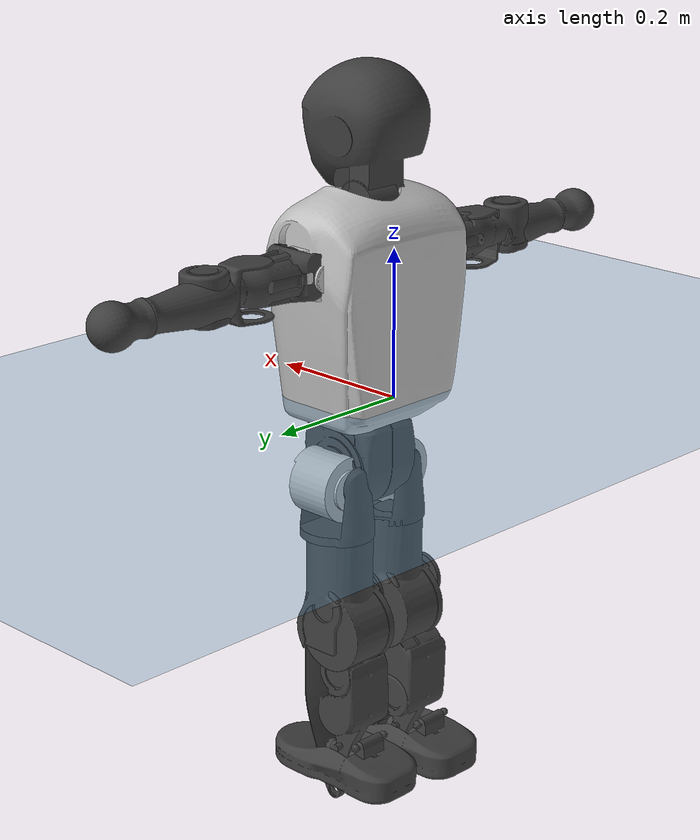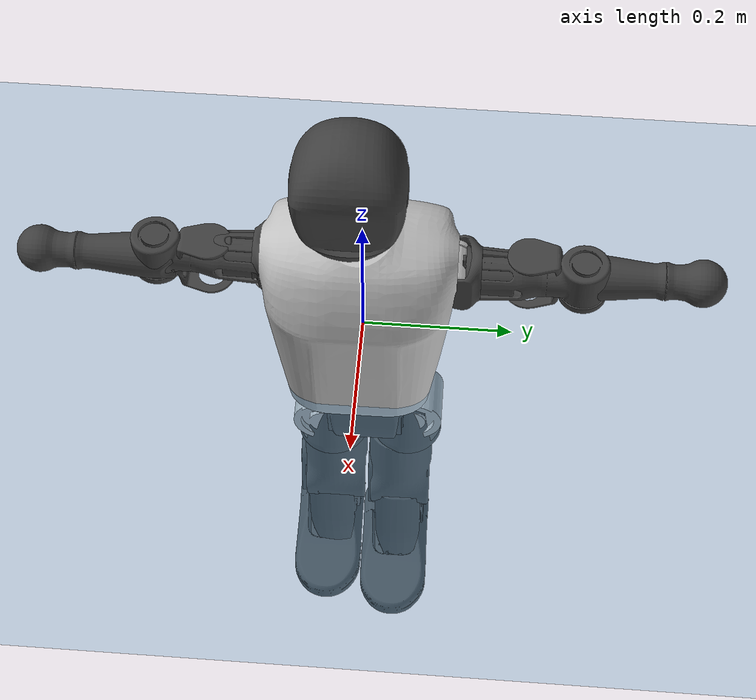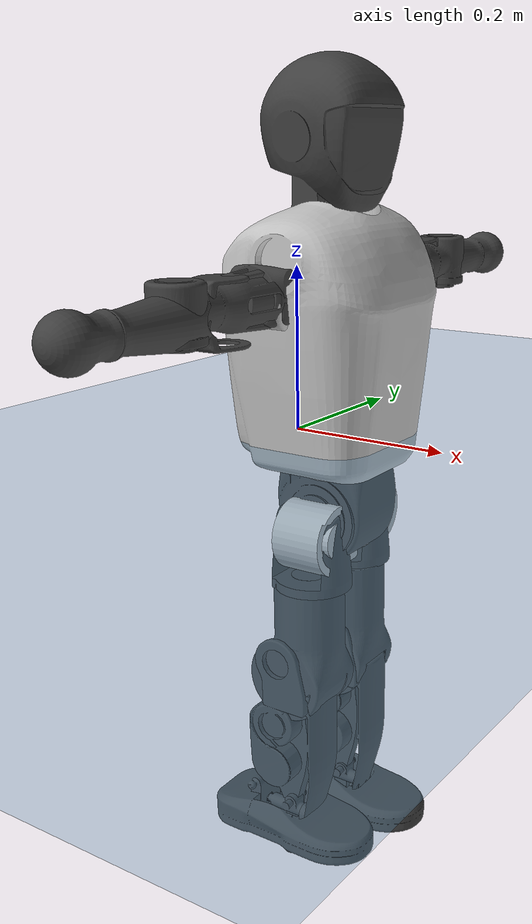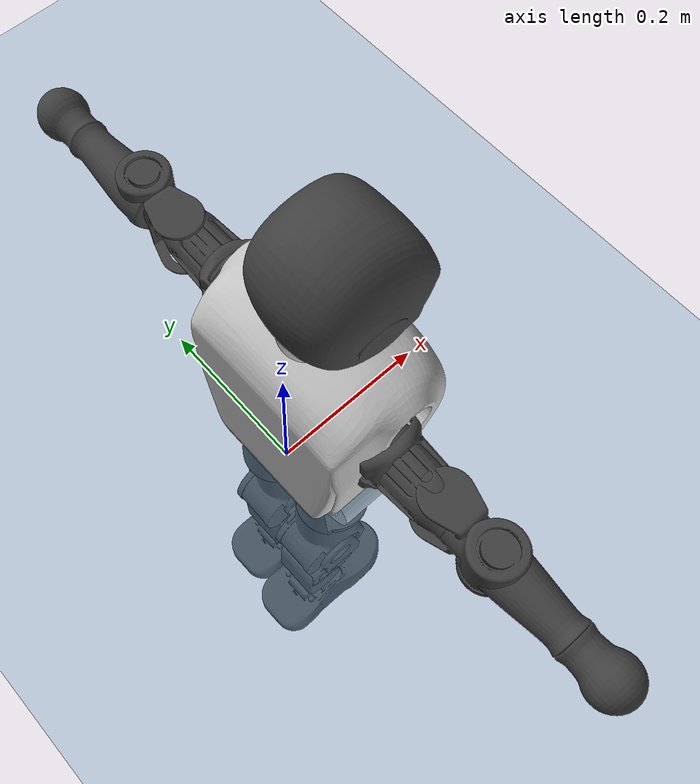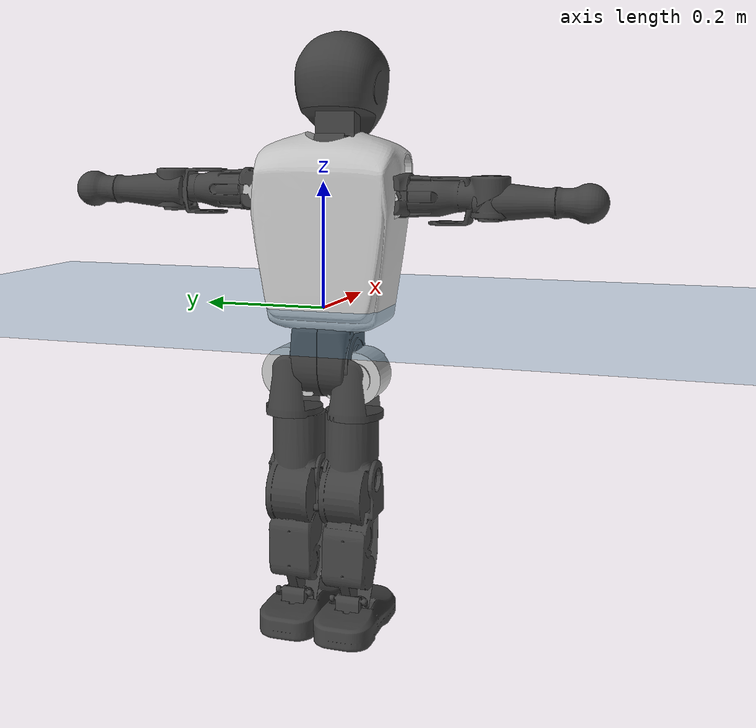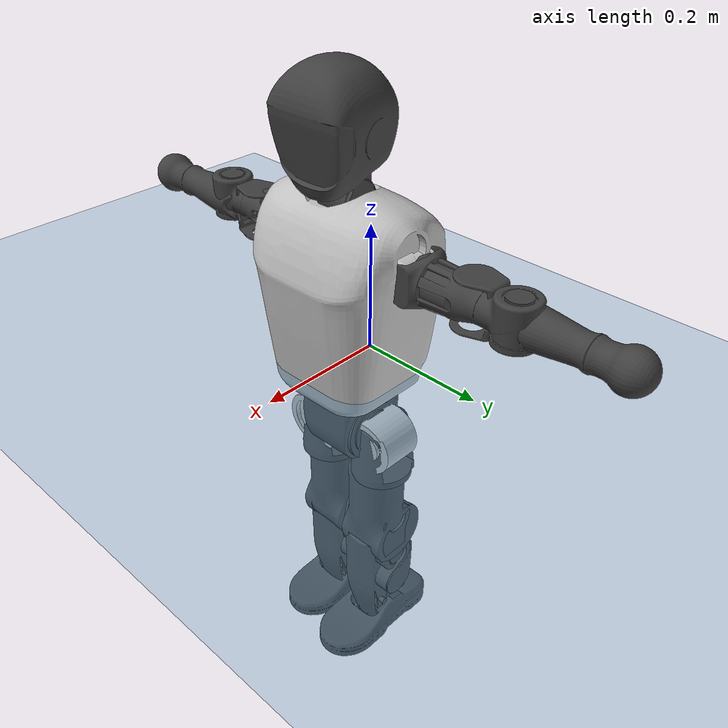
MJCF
<mujoco model="T1">
  <compiler angle="radian" assetdir="assets" balanceinertia="true" inertiafromgeom="false"/>

  <option timestep="0.005" density="1.2" viscosity="2e-05"/>

  <size nkey="1"/>

  <visual>
    <quality shadowsize="8192"/>
    <map shadowclip="0.5"/>
  </visual>

  <default>
    <default class="/">
      <joint armature="0.01" damping="0.01" frictionloss="0.1"/>
      <geom contype="0" conaffinity="0" group="1" solref="-1000 -80"/>
      <site size="0.01 0.005 0.005" group="5"/>
      <general forcelimited="true" biastype="affine" gainprm="25" biasprm="0 -25 -0.6"/>
      <default class="t1">
        <geom rgba="0.25 0.25 0.25 1"/>
        <default class="visual">
          <geom type="mesh" group="2"/>
        </default>
        <default class="collision">
          <geom group="3"/>
        </default>
        <default class="foot">
          <geom size="0.1115 0.05 0.015" type="box" condim="6" group="4" priority="1" solimp="0.015 1 0.015"/>
        </default>
        <default class="reward_collision_sphere">
          <geom group="5" rgba="1 0 0 1"/>
        </default>
      </default>
    </default>
  </default>

  <asset>
    <texture type="skybox" colorspace="auto" name="//unnamed_texture_0" builtin="gradient" rgb1="0.95 0.95 0.95" rgb2="0.95 0.95 0.95" width="100" height="600"/>
    <texture type="2d" colorspace="auto" name="texplane" builtin="checker" rgb1="0.345 0.575 0.748" rgb2="0.345 0.575 0.748" markrgb="1 1 1" width="512" height="512"/>
    <material name="MatPlane" class="/" texture="texplane" texuniform="true" texrepeat="2 2" specular="0.9"/>
    <mesh name="Trunk" class="/" file="Trunk.stl"/>
    <mesh name="H1" class="/" file="H1.stl"/>
    <mesh name="H2" class="/" file="H2.stl"/>
    <mesh name="AL1" class="/" file="AL1.stl"/>
    <mesh name="AL2" class="/" file="AL2.stl"/>
    <mesh name="AL3" class="/" file="AL3.stl"/>
    <mesh name="left_hand_link" class="/" file="left_hand_link.stl"/>
    <mesh name="AR1" class="/" file="AR1.stl"/>
    <mesh name="AR2" class="/" file="AR2.stl"/>
    <mesh name="AR3" class="/" file="AR3.stl"/>
    <mesh name="right_hand_link" class="/" file="right_hand_link.stl"/>
    <mesh name="Waist" class="/" file="Waist.stl"/>
    <mesh name="Hip_Pitch_Left" class="/" file="Hip_Pitch_Left.stl"/>
    <mesh name="Hip_Roll_Left" class="/" file="Hip_Roll_Left.stl"/>
    <mesh name="Hip_Yaw_Left" class="/" file="Hip_Yaw_Left.stl"/>
    <mesh name="Shank_Left" class="/" file="Shank_Left.stl"/>
    <mesh name="Ankle_Cross_Left" class="/" file="Ankle_Cross_Left.stl"/>
    <mesh name="left_foot_link" class="/" file="left_foot_link.stl"/>
    <mesh name="Hip_Pitch_Right" class="/" file="Hip_Pitch_Right.stl"/>
    <mesh name="Hip_Roll_Right" class="/" file="Hip_Roll_Right.stl"/>
    <mesh name="Hip_Yaw_Right" class="/" file="Hip_Yaw_Right.stl"/>
    <mesh name="Shank_Right" class="/" file="Shank_Right.stl"/>
    <mesh name="Ankle_Cross_Right" class="/" file="Ankle_Cross_Right.stl"/>
    <mesh name="right_foot_link" class="/" file="right_foot_link.stl"/>
  </asset>

  <worldbody>
    <geom name="floor" class="/" size="100 100 0.125" type="plane" group="0" material="MatPlane"/>
    <light name="toplight_shadow" class="/" pos="0 0 5" dir="0.0990148 0.0990148 -0.990148" type="directional" ambient="0.04 0.04 0.04" diffuse="0.55 0.55 0.55" specular="0.12 0.12 0.12"/>
    <light name="toplight_fill" class="/" pos="0 0 5" dir="0.0990148 0.0990148 -0.990148" type="directional" castshadow="false" ambient="0.04 0.04 0.04" diffuse="0.3 0.3 0.3" specular="0.08 0.08 0.08"/>
    <body name="trunk" childclass="t1" pos="-0.0019688 0.00231221 -0.00154194" quat="0.999992 0.00294818 0.000800139 0.00245461">
      <inertial pos="0.0461756 0.00567682 0.0853505" quat="0.999871 -0.00644795 -0.013027 0.00676205" mass="4.36789" diaginertia="0.0211993 0.00454144 0.0199702"/>
      <joint name="//unnamed_joint_0" type="free" armature="0" damping="0" frictionloss="0"/>
      <geom name="//unnamed_geom_1" class="visual" rgba="0.76 0.76 0.76 1" mesh="Trunk"/>
      <geom name="//unnamed_geom_2" class="collision" size="0.0525036 0.0700048 0.105007" pos="0.0446868 0 0.0952197" type="box"/>
      <geom name="//unnamed_geom_3" class="reward_collision_sphere" size="0.0805055" pos="0.0446868 0 0.0793498"/>
      <geom name="//unnamed_geom_4" class="reward_collision_sphere" size="0.0105007" pos="0.0446868 0.0477586 0"/>
      <geom name="//unnamed_geom_5" class="reward_collision_sphere" size="0.0105007" pos="0.0446868 -0.0477586 0"/>
      <geom name="//unnamed_geom_6" class="reward_collision_sphere" size="0.0105007" pos="0.0446868 0.0601197 0.14283"/>
      <geom name="//unnamed_geom_7" class="reward_collision_sphere" size="0.0105007" pos="0.0446868 -0.0601197 0.14283"/>
      <site name="imu" pos="-0.0221251 0.00427837 0.0222692" size="0.00700048"/>
      <camera name="track" pos="0 -1.12373 0" quat="0.707107 0.707107 0 0" mode="trackcom"/>
      <camera name="ego_camera" pos="0.0908632 0 0.333269" quat="-0.5 -0.5 0.5 0.5"/>
      <body name="H1" pos="0.0467446 -0.0021514 0.19347" quat="1 0.00043819 0.000373121 0.000291499">
        <inertial pos="0.00216913 -0.00950606 0.0436942" quat="0.765197 -0.0502914 -0.00589224 0.641802" mass="0.160568" diaginertia="5.86871e-05 1.39196e-05 5.56282e-05"/>
        <joint name="AAHead_yaw" pos="0 0 0" axis="-0.0209906 -0.0322482 0.999259" range="-1.57368 1.54419" armature="0.00822305" damping="0.0100844" frictionloss="0.0691655"/>
        <geom name="//unnamed_geom_8" class="visual" mesh="H1"/>
        <body name="H2" pos="-0.00484979 -0.00800546 0.0530205" quat="1 -0.000559265 0.000563305 -0.000139545">
          <inertial pos="2.03555e-05 -0.00659384 0.0800722" quat="0.987967 0.10352 -0.0801896 -0.0823114" mass="0.211344" diaginertia="0.00041677 0.000105098 0.00052566"/>
          <joint name="Head_pitch" pos="0 0 0" axis="0.00388613 -0.99998 -0.00492228" range="-1.25209 0.358713" armature="0.00983501" damping="0.00622484" frictionloss="0.0355952"/>
          <geom name="//unnamed_geom_9" class="visual" mesh="H2"/>
          <geom name="//unnamed_geom_10" class="collision" size="0.0560039" pos="0.0074478 0 0.0872848"/>
          <geom name="//unnamed_geom_11" class="reward_collision_sphere" size="0.0630043" pos="0.0148956 0 0.0793498"/>
        </body>
      </body>
      <body name="AL1" pos="0.0452807 0.0641903 0.182141" quat="1 0.000293536 0.000340584 -0.000382707">
        <inertial pos="0.00753596 0.0272846 -0.00160629" quat="0.502068 0.499557 -0.497196 0.501166" mass="0.175528" diaginertia="0.000311766 7.16092e-05 9.61805e-05"/>
        <joint name="Left_Shoulder_Pitch" pos="0 0 0" axis="-0.034227 0.999153 -0.0228549" stiffness="0.00376842" range="-3.27043 1.26881" armature="0.00659413" damping="0.00882122" frictionloss="0.073185"/>
        <geom name="//unnamed_geom_12" class="visual" rgba="0.76 0.76 0.76 1" mesh="AL1"/>
        <body name="AL2" pos="0.00342617 0.0308122 0.0044404" quat="1 0.000164841 0.000280035 6.80794e-07">
          <inertial pos="0.000434051 0.0238277 0.00632047" quat="0.497988 0.509678 -0.501436 0.490712" mass="0.056902" diaginertia="9.13127e-05 1.92635e-05 5.55966e-05"/>
          <joint name="Left_Shoulder_Roll" pos="0 0 0" axis="-0.99995 -0.00773314 0.00641575" range="-1.60682 1.77593" armature="0.00644298" damping="0" frictionloss="0.066921"/>
          <geom name="//unnamed_geom_13" class="visual" mesh="AL2"/>
          <body name="AL3" pos="-0.000556715 0.0364955 -0.00120786" quat="0.999999 -0.000678853 -0.000247662 -0.0007539">
            <inertial pos="0.00305099 0.0476323 0.00130957" quat="0.687633 0.7253 0.0211868 -0.0255282" mass="0.348887" diaginertia="0.00282122 0.000701484 0.000215458"/>
            <joint name="Left_Elbow_Pitch" pos="0 0 0" axis="-0.00650413 -0.999968 -0.00470126" stiffness="0.00256324" range="-2.2685 2.23579" armature="0.00720841" damping="0" frictionloss="0.0394709"/>
            <geom name="//unnamed_geom_14" class="visual" mesh="AL3"/>
            <geom name="//unnamed_geom_15" class="collision" size="0.0210014 0.0525036" pos="0 0.0280933 0" quat="0.707105 0.707108 0 0" type="cylinder"/>
            <geom name="//unnamed_geom_16" class="reward_collision_sphere" size="0.0252017"/>
            <body name="left_hand_link" pos="-0.00681636 0.0788108 -0.00381638" quat="1 -0.000628236 -0.000131732 0.000155022">
              <inertial pos="-0.00702449 0.0659965 0.00696726" quat="0.707546 0.706666 0.00111042 -0.00112544" mass="0.112235" diaginertia="0.00188809 0.000431526 6.34793e-05"/>
              <joint name="Left_Elbow_Yaw" pos="0 0 0" axis="0.000272707 0.00893947 0.99996" stiffness="0.0064138" range="-2.4075 -0.016376" armature="0.00553111" damping="0" frictionloss="0.0706005"/>
              <geom name="//unnamed_geom_17" class="visual" mesh="left_hand_link"/>
              <geom name="//unnamed_geom_18" class="collision" size="0.0210014 0.0612542" pos="0 0.0730426 0" quat="0.707105 0.707108 0 0" type="cylinder"/>
              <geom name="//unnamed_geom_19" class="reward_collision_sphere" size="0.0350024"/>
              <geom name="//unnamed_geom_20" class="reward_collision_sphere" size="0.0245017" pos="0 0.0618053 0"/>
              <geom name="//unnamed_geom_21" class="reward_collision_sphere" size="0.0245017" pos="0 0.120801 0"/>
            </body>
          </body>
        </body>
      </body>
      <body name="AR1" pos="0.0372133 -0.0567829 0.173781" quat="0.999987 -0.00425069 0.00185841 -0.00201853">
        <inertial pos="-0.000388989 -0.0241533 -0.0014741" quat="0.499326 0.501261 -0.503913 0.495462" mass="0.162104" diaginertia="0.000299152 6.33231e-05 8.44373e-05"/>
        <joint name="Right_Shoulder_Pitch" pos="0 0 0" axis="-0.00394774 -0.999991 0.00140892" range="-1.29694 3.31637" armature="0.00714694" damping="0" frictionloss="0.07572"/>
        <geom name="//unnamed_geom_22" class="visual" rgba="0.76 0.76 0.76 1" mesh="AR1"/>
        <body name="AR2" pos="-0.00269166 -0.0222653 0.00815563" quat="0.999996 8.39712e-05 -0.00295367 0.000316436">
          <inertial pos="0.00377263 -0.0222627 0.000848811" quat="0.508456 0.498169 -0.521192 0.470807" mass="0.0583986" diaginertia="9.73181e-05 1.97477e-05 5.80981e-05"/>
          <joint name="Right_Shoulder_Roll" pos="0 0 0" axis="-0.999561 0.00230455 -0.0295426" stiffness="0.0178442" range="-1.70082 1.61342" armature="0.00685879" damping="0.033817" frictionloss="0.0637278"/>
          <geom name="//unnamed_geom_23" class="visual" mesh="AR2"/>
          <body name="AR3" pos="0.0030674 -0.0326892 -0.0022846" quat="0.999994 -0.000635645 -0.00230085 -0.00245965">
            <inertial pos="-0.00982888 -0.0457189 -0.000995585" quat="0.705985 0.708202 0.00314904 0.00492085" mass="0.341478" diaginertia="0.00262281 0.00064268 0.000178821"/>
            <joint name="Right_Elbow_Pitch" pos="0 0 0" axis="-0.00668284 0.9999 0.0124434" range="-2.25141 2.47354" armature="0.00712564" damping="0.00170617" frictionloss="0.062321"/>
            <geom name="//unnamed_geom_24" class="visual" mesh="AR3"/>
            <geom name="//unnamed_geom_25" class="collision" size="0.0210014 0.0525036" pos="0 -0.0280933 0" quat="0.707105 0.707108 0 0" type="cylinder"/>
            <geom name="//unnamed_geom_26" class="reward_collision_sphere" size="0.0252017"/>
            <body name="right_hand_link" pos="0.00179813 -0.0786232 -0.00709596" quat="0.999995 0.00185562 -0.000305092 0.00236936">
              <inertial pos="-0.00882962 -0.061906 0.00769327" quat="0.708911 0.705297 0.000710667 0.000957727" mass="0.125624" diaginertia="0.00235098 0.000533405 6.80913e-05"/>
              <joint name="Right_Elbow_Yaw" pos="0 0 0" axis="0.00977033 -0.00379682 0.999945" range="0.0258071 2.57771" armature="0.00722209" damping="0.00911033" frictionloss="0.0697101"/>
              <geom name="//unnamed_geom_27" class="visual" mesh="right_hand_link"/>
              <geom name="//unnamed_geom_28" class="collision" size="0.0210014 0.0612542" pos="0 -0.0730426 0" quat="0.707105 0.707108 0 0" type="cylinder"/>
              <geom name="//unnamed_geom_29" class="reward_collision_sphere" size="0.0350024"/>
              <geom name="//unnamed_geom_30" class="reward_collision_sphere" size="0.0245017" pos="0 -0.0618053 0"/>
              <geom name="//unnamed_geom_31" class="reward_collision_sphere" size="0.0245017" pos="0 -0.120801 0"/>
            </body>
          </body>
        </body>
      </body>
      <body name="Waist" pos="0.0534334 0.00689388 -0.0940054" quat="0.999999 0.000846541 -0.000996087 0.000873389">
        <inertial pos="0.00333659 -0.00566832 0.0043097" quat="0.987221 0.00371568 -0.158767 0.0131842" mass="0.995798" diaginertia="0.00128319 0.000320958 0.00166091"/>
        <joint name="Waist" pos="0 0 0" axis="-0.000100941 -0.0032888 0.999995" stiffness="0.00352795" range="-1.53501 1.59432" armature="0.00779478" damping="0.047243" frictionloss="0.0589378"/>
        <geom name="//unnamed_geom_32" class="visual" mesh="Waist"/>
        <body name="Hip_Pitch_Left" pos="-0.00288141 0.059126 0.0013965" quat="1 0.000338517 -0.000289772 0.000167446">
          <inertial pos="0.00228175 -0.00282012 -0.00714235" quat="0.975599 0.219018 0.0154117 0.000181687" mass="0.368119" diaginertia="0.00042513 8.36299e-05 0.000406707"/>
          <joint name="Left_Hip_Pitch" pos="0 0 0" axis="-0.00582206 0.999983 0.000863679" range="-1.77314 1.43617" armature="0.00694777" damping="0.0294924" frictionloss="0.0756715"/>
          <geom name="//unnamed_geom_33" class="visual" rgba="0.76 0.76 0.76 1" mesh="Hip_Pitch_Left"/>
          <body name="Hip_Roll_Left" pos="-0.00745773 -0.00416251 -0.0121481" quat="0.999999 0.000626339 -0.000160065 0.000770655">
            <inertial pos="0.000198032 -3.04482e-05 -0.0364315" quat="0.705554 0.0024585 -0.00841364 0.708602" mass="0.119981" diaginertia="0.000338736 8.42225e-05 0.000162638"/>
            <joint name="Left_Hip_Roll" pos="0 0 0" axis="-0.999971 0.00678633 -0.00330941" stiffness="0.035228" range="-1.54136 0.0441177" armature="0.00777499" damping="0.00805704" frictionloss="0.0767417"/>
            <geom name="//unnamed_geom_34" class="visual" mesh="Hip_Roll_Left"/>
            <geom name="//unnamed_geom_35" class="reward_collision_sphere" size="0.0385026"/>
            <body name="Hip_Yaw_Left" pos="0.00154436 -0.00869472 -0.0750752" quat="1 -5.2358e-06 -6.77786e-05 -3.53227e-05">
              <inertial pos="-0.0025244 -0.00176726 -0.0714886" quat="0.683153 -0.0513297 -0.05356 0.726497" mass="0.772686" diaginertia="0.0057062 0.00152408 0.000769975"/>
              <joint name="Left_Hip_Yaw" pos="0 0 0" axis="0.000121269 -0.00102712 -0.999999" range="-1.04929 0.807907" armature="0.00573734" damping="0.0579477" frictionloss="0.0717735"/>
              <geom name="//unnamed_geom_36" class="visual" mesh="Hip_Yaw_Left"/>
              <geom name="//unnamed_geom_37" class="collision" size="0.0350024 0.0560039" type="cylinder"/>
              <body name="Shank_Left" pos="-0.0071767 -0.00268708 -0.0991312" quat="0.999999 -0.000554773 0.000501073 0.000692264">
                <inertial pos="-0.00163875 -0.000123089 -0.0924031" quat="0.997733 0.00248256 -0.0274887 0.0613818" mass="0.566146" diaginertia="0.0076627 0.00204503 0.000641267"/>
                <joint name="Left_Knee_Pitch" pos="0 0 0" axis="-0.00264579 0.999991 -0.00325598" range="-0.0609018 2.32833" armature="0.0070484" damping="0" frictionloss="0.0698003"/>
                <geom name="//unnamed_geom_38" class="visual" mesh="Shank_Left"/>
                <geom name="//unnamed_geom_39" class="collision" size="0.0350024 0.0525036" pos="0 0 -0.0952197" type="cylinder"/>
                <geom name="//unnamed_geom_40" class="reward_collision_sphere" size="0.0455031"/>
                <body name="Ankle_Cross_Left" pos="-0.000206122 -0.00203348 -0.216605" quat="1 -0.000406279 -5.45495e-05 3.96176e-05">
                  <inertial pos="0.00506667 -0.00782777 -0.00602874" quat="0.444436 0.551153 0.551713 0.440816" mass="0.0267893" diaginertia="6.47199e-06 1.59791e-06 3.66602e-06"/>
                  <joint name="Left_Ankle_Pitch" pos="0 0 0" axis="0.0236353 0.999553 0.0182929" range="-0.794334 0.366686" armature="0.00954127" damping="0.00399121" frictionloss="0.059193"/>
                  <geom name="//unnamed_geom_41" class="visual" mesh="Ankle_Cross_Left"/>
                  <body name="left_foot_link" pos="0.000105267 -0.00378787 -0.0164611" quat="0.99999 0.00197459 0.00134998 0.0037475">
                    <inertial pos="0.00754692 0.00169733 -0.00628768" quat="-0.012807 0.62039 0.00495041 0.784173" mass="0.239268" diaginertia="0.000579333 0.000131518 0.000621464"/>
                    <joint name="Left_Ankle_Roll" pos="0 0 0" axis="-0.999999 -0.00130337 -0.000802937" stiffness="0.0315537" range="-0.296041 0.599292" armature="0.00588809" damping="0" frictionloss="0.0967807"/>
                    <geom name="//unnamed_geom_42" class="visual" mesh="left_foot_link"/>
                    <geom name="left_foot" class="foot" size="0.0898344 0.0398548 0.00954071" pos="0.0074478 0 -0.0119025"/>
                    <geom name="//unnamed_geom_44" class="reward_collision_sphere" size="0.0364025" pos="0.0074478 0 -0.0119025"/>
                    <geom name="//unnamed_geom_45" class="reward_collision_sphere" size="0.0210014" pos="0.0707541 -0.0129229 -0.0119025"/>
                    <geom name="//unnamed_geom_46" class="reward_collision_sphere" size="0.0210014" pos="-0.0521346 -0.0129229 -0.0119025"/>
                    <site name="left_foot" class="foot" pos="0.0074478 0 -0.0119025" size="0.00700048"/>
                  </body>
                </body>
              </body>
            </body>
          </body>
        </body>
        <body name="Hip_Pitch_Right" pos="0.00377407 -0.0548285 -0.00120639" quat="0.999994 0.000507489 -0.00249957 -0.0023437">
          <inertial pos="-0.00121085 0.0093861 -0.0177993" quat="0.972798 -0.230423 0.0237276 -0.00264532" mass="0.351299" diaginertia="0.000392749 7.66926e-05 0.000361424"/>
          <joint name="Right_Hip_Pitch" pos="0 0 0" axis="0.00051282 -1 0.000220826" range="-1.55313 1.82824" armature="0.0053128" damping="0.0129214" frictionloss="0.0749013"/>
          <geom name="//unnamed_geom_47" class="visual" rgba="0.76 0.76 0.76 1" mesh="Hip_Pitch_Right"/>
          <body name="Hip_Roll_Right" pos="-0.00829681 0.00650238 -0.0108443" quat="1 1.83758e-05 0.000395377 -9.66221e-05">
            <inertial pos="0.000262574 -0.00103433 -0.0472736" quat="0.707322 -0.00769454 -0.0158388 0.706672" mass="0.114482" diaginertia="0.000381077 7.6222e-05 0.000153147"/>
            <joint name="Right_Hip_Roll" pos="0 0 0" axis="-0.999981 -0.00148081 0.00595519" range="-0.205748 1.75098" armature="0.00774206" damping="0.0455059" frictionloss="0.0994051"/>
            <geom name="//unnamed_geom_48" class="visual" mesh="Hip_Roll_Right"/>
            <geom name="//unnamed_geom_49" class="reward_collision_sphere" size="0.0385026"/>
            <body name="Hip_Yaw_Right" pos="-0.00776005 0.00184515 -0.0687667" quat="0.999997 -0.000423741 0.00222822 0.000512613">
              <inertial pos="-0.00685533 0.00402023 -0.0749318" quat="0.711047 -0.0348236 0.0144463 0.702133" mass="0.737543" diaginertia="0.00659871 0.00137028 0.000910194"/>
              <joint name="Right_Hip_Yaw" pos="0 0 0" axis="0.0393544 -0.0275742 -0.998845" range="-1.04151 0.967687" armature="0.0091498" damping="0" frictionloss="0.0770108"/>
              <geom name="//unnamed_geom_50" class="visual" mesh="Hip_Yaw_Right"/>
              <geom name="//unnamed_geom_51" class="collision" size="0.0350024 0.0560039" type="cylinder"/>
              <body name="Shank_Right" pos="-0.0183948 -0.00779242 -0.104864" quat="0.999998 0.00122854 0.000829594 0.000963195">
                <inertial pos="-0.00709359 0.00306787 -0.09683" quat="0.998786 -0.0167595 -0.0463043 -0.000927957" mass="0.635241" diaginertia="0.00759303 0.00196175 0.000599155"/>
                <joint name="Right_Knee_Pitch" pos="0 0 0" axis="-0.00275004 -0.999429 0.0336853" stiffness="0.0419317" range="-2.35161 -0.0842132" armature="0.00688125" damping="0" frictionloss="0.0629734"/>
                <geom name="//unnamed_geom_52" class="visual" mesh="Shank_Right"/>
                <geom name="//unnamed_geom_53" class="collision" size="0.0350024 0.0525036" pos="0 0 -0.0952197" type="cylinder"/>
                <geom name="//unnamed_geom_54" class="reward_collision_sphere" size="0.0455031"/>
                <body name="Ankle_Cross_Right" pos="0.000234352 -0.00673246 -0.215823" quat="0.999994 -0.00166258 0.00194404 0.00213381">
                  <inertial pos="-0.00505789 -0.00561499 -0.00851938" quat="0.443187 0.551024 0.551011 0.443107" mass="0.0253282" diaginertia="7.5434e-06 1.45497e-06 3.83231e-06"/>
                  <joint name="Right_Ankle_Pitch" pos="0 0 0" axis="-0.00450912 -0.999752 0.0218235" range="-0.151596 0.832112" armature="0.00812495" damping="0.00254694" frictionloss="0.0643756"/>
                  <geom name="//unnamed_geom_55" class="visual" mesh="Ankle_Cross_Right"/>
                  <body name="right_foot_link" pos="-0.00515339 -0.00317182 -0.0112653" quat="1 -0.000360975 0.000624052 -0.000626285">
                    <inertial pos="5.16738e-05 -0.00563904 -0.0073277" quat="-0.00372896 0.61481 -0.00716001 0.788634" mass="0.189907" diaginertia="0.000566928 0.000122945 0.000632295"/>
                    <joint name="Right_Ankle_Roll" pos="0 0 0" axis="-0.999997 -0.00238552 0.000644098" range="-0.467303 0.499715" armature="0.00748542" damping="0.000943273" frictionloss="0.10079"/>
                    <geom name="//unnamed_geom_56" class="visual" mesh="right_foot_link"/>
                    <geom name="right_foot" class="foot" size="0.0967706 0.0358764 0.0101213" pos="0.0074478 0 -0.0119025"/>
                    <geom name="//unnamed_geom_58" class="reward_collision_sphere" size="0.0280019"/>
                    <geom name="//unnamed_geom_59" class="reward_collision_sphere" size="0.0210014" pos="0.0074478 0 -0.0119025"/>
                    <geom name="//unnamed_geom_60" class="reward_collision_sphere" size="0.0210014" pos="0.0707541 0.0129229 -0.0119025"/>
                    <geom name="//unnamed_geom_61" class="reward_collision_sphere" size="0.0210014" pos="-0.0521346 0.0129229 -0.0119025"/>
                    <site name="right_foot" class="foot" pos="0.0074478 0 -0.0119025" size="0.00700048"/>
                  </body>
                </body>
              </body>
            </body>
          </body>
        </body>
      </body>
    </body>
  </worldbody>

  <contact>
    <pair class="/" geom1="floor" geom2="left_foot" name="//unnamed_contact_0"/>
    <pair class="/" geom1="floor" geom2="right_foot" name="//unnamed_contact_1"/>
  </contact>

  <actuator>
    <general name="AAHead_yaw" class="/" joint="AAHead_yaw" forcerange="-4.92943 4.92943" gainprm="21.4647" biasprm="0 -21.4647 -0.389699"/>
    <general name="Head_pitch" class="/" joint="Head_pitch" forcerange="-4.88068 4.88068" gainprm="21.4647" biasprm="0 -21.4647 -0.389699"/>
    <general name="Left_Shoulder_Pitch" class="/" joint="Left_Shoulder_Pitch" forcerange="-17.3098 17.3098" gainprm="21.4647" biasprm="0 -21.4647 -0.389699"/>
    <general name="Left_Shoulder_Roll" class="/" joint="Left_Shoulder_Roll" forcerange="-12.0871 12.0871" gainprm="21.4647" biasprm="0 -21.4647 -0.389699"/>
    <general name="Left_Elbow_Pitch" class="/" joint="Left_Elbow_Pitch" forcerange="-13.6763 13.6763" gainprm="21.4647" biasprm="0 -21.4647 -0.389699"/>
    <general name="Left_Elbow_Yaw" class="/" joint="Left_Elbow_Yaw" forcerange="-12.0874 12.0874" gainprm="21.4647" biasprm="0 -21.4647 -0.389699"/>
    <general name="Right_Shoulder_Pitch" class="/" joint="Right_Shoulder_Pitch" forcerange="-12.1128 12.1128" gainprm="21.4647" biasprm="0 -21.4647 -0.389699"/>
    <general name="Right_Shoulder_Roll" class="/" joint="Right_Shoulder_Roll" forcerange="-13.4365 13.4365" gainprm="21.4647" biasprm="0 -21.4647 -0.389699"/>
    <general name="Right_Elbow_Pitch" class="/" joint="Right_Elbow_Pitch" forcerange="-13.9841 13.9841" gainprm="21.4647" biasprm="0 -21.4647 -0.389699"/>
    <general name="Right_Elbow_Yaw" class="/" joint="Right_Elbow_Yaw" forcerange="-13.9225 13.9225" gainprm="21.4647" biasprm="0 -21.4647 -0.389699"/>
    <general name="Waist" class="/" joint="Waist" forcerange="-23.2037 23.2037" gainprm="21.4647" biasprm="0 -21.4647 -0.389699"/>
    <general name="Left_Hip_Pitch" class="/" joint="Left_Hip_Pitch" forcerange="-28.9845 28.9845" gainprm="21.4647" biasprm="0 -21.4647 -0.389699"/>
    <general name="Left_Hip_Roll" class="/" joint="Left_Hip_Roll" forcerange="-22.9108 22.9108" gainprm="21.4647" biasprm="0 -21.4647 -0.389699"/>
    <general name="Left_Hip_Yaw" class="/" joint="Left_Hip_Yaw" forcerange="-23.0243 23.0243" gainprm="21.4647" biasprm="0 -21.4647 -0.389699"/>
    <general name="Left_Knee_Pitch" class="/" joint="Left_Knee_Pitch" forcerange="-39.7402 39.7402" gainprm="21.4647" biasprm="0 -21.4647 -0.389699"/>
    <general name="Left_Ankle_Pitch" class="/" joint="Left_Ankle_Pitch" forcerange="-9.58595 9.58595" gainprm="21.4647" biasprm="0 -21.4647 -0.389699"/>
    <general name="Left_Ankle_Roll" class="/" joint="Left_Ankle_Roll" forcerange="-13.3158 13.3158" gainprm="21.4647" biasprm="0 -21.4647 -0.389699"/>
    <general name="Right_Hip_Pitch" class="/" joint="Right_Hip_Pitch" forcerange="-33.8765 33.8765" gainprm="21.4647" biasprm="0 -21.4647 -0.389699"/>
    <general name="Right_Hip_Roll" class="/" joint="Right_Hip_Roll" forcerange="-15.2987 15.2987" gainprm="21.4647" biasprm="0 -21.4647 -0.389699"/>
    <general name="Right_Hip_Yaw" class="/" joint="Right_Hip_Yaw" forcerange="-25.0853 25.0853" gainprm="21.4647" biasprm="0 -21.4647 -0.389699"/>
    <general name="Right_Knee_Pitch" class="/" joint="Right_Knee_Pitch" forcerange="-48.4814 48.4814" gainprm="21.4647" biasprm="0 -21.4647 -0.389699"/>
    <general name="Right_Ankle_Pitch" class="/" joint="Right_Ankle_Pitch" forcerange="-12.9664 12.9664" gainprm="21.4647" biasprm="0 -21.4647 -0.389699"/>
    <general name="Right_Ankle_Roll" class="/" joint="Right_Ankle_Roll" forcerange="-8.05934 8.05934" gainprm="21.4647" biasprm="0 -21.4647 -0.389699"/>
  </actuator>

  <sensor>
    <gyro site="imu" name="imu_angular_velocity"/>
    <velocimeter site="imu" name="imu_linear_velocity"/>
    <framelinvel objtype="site" objname="left_foot" name="left_foot_global_linear_velocity"/>
    <framelinvel objtype="site" objname="right_foot" name="right_foot_global_linear_velocity"/>
  </sensor>

  <keyframe>
    <key name="home" qpos="0 0 0.6385 1 0 0 0 0 0 0 1.4 0 -0.4 0 -1.4 0 0.4 0 -0.4 0 0 0.8 -0.4 0 0.4 0 0 -0.8 0.4 0"/>
  </keyframe>
</mujoco>
